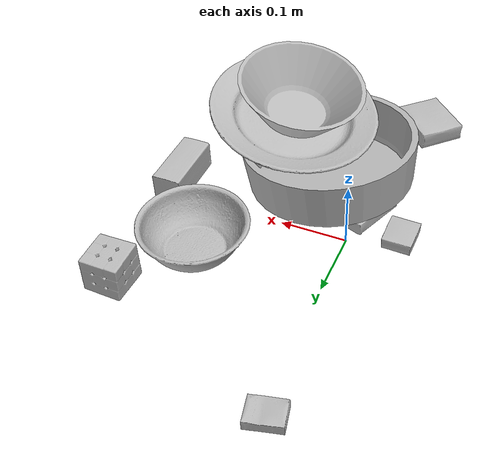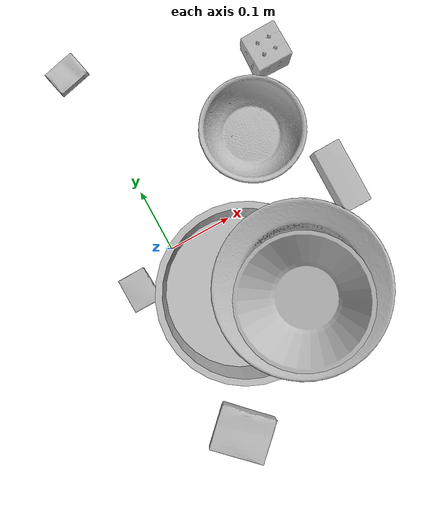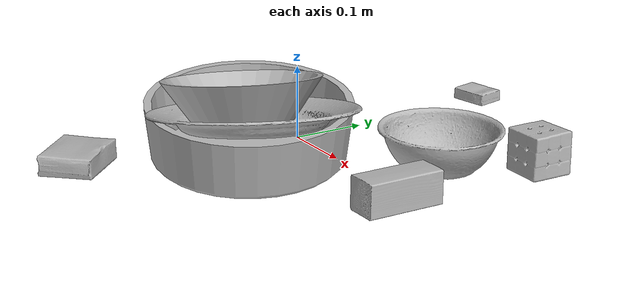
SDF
<sdf version="1.4">
  <world name="default">
    <light name="light1" type="point">
      <pose>0 0 1 0 0 0</pose>
      <diffuse>3 3 3 1</diffuse>
      <specular>3 3 3 1</specular>
    </light>
    <light name="light2" type="point">
      <pose>0 0.5 2 0 0 0</pose>
      <diffuse>1 1 1 1</diffuse>
      <specular>1 1 1 1</specular>
    </light>
    <light name="light3" type="point">
      <pose>0 0.5 2 0 0 0</pose>
      <diffuse>3 3 3 1</diffuse>
      <specular>3 3 3 1</specular>
    </light>
    <scene>
      <ambient>0.7 0.7 0.7</ambient>
    </scene>
    <model name="box1">
      <link name="link_box1">
        <collision name="default">
          <geometry>
            <mesh>
              <uri>model://cracker_box/collision_meshes/collision.obj</uri>
              <scale>0.25 0.25 0.25</scale>
            </mesh>
          </geometry>
          <surface>
            <friction>
              <ode>
                <mu>0.5</mu>
                <mu2>0.5</mu2>
              </ode>
            </friction>
          <contact>
        <ode>
            <max_vel>0</max_vel>
            <min_depth>0.0001</min_depth>
            <kp>1e8</kp>
        </ode>
    </contact></surface>
        </collision>
        <visual name="default">
          <geometry>
            <mesh>
              <uri>model://cracker_box/visual_meshes/visual.dae</uri>
              <scale>0.25 0.25 0.25</scale>
            </mesh>
          </geometry>
        </visual>
        <inertial>
          <mass>0.050503700971603394</mass>
          <pose>0.0002366037224419415 6.358561950037256e-05 -0.0004257383698131889 -0.00031620760376762643 -0.011106489600284392 0.0025467959332018085</pose>
          <inertia>
            <ixx>8.02868e-06</ixx>
            <iyy>1.3256925e-05</iyy>
            <izz>1.8918852e-05</izz>
            <ixy>0</ixy>
            <ixz>0</ixz>
            <iyz>0</iyz>
          </inertia>
        </inertial>
      </link>
      <pose>-0.012172628194093704 0.31295984983444214 0.009096029214560986 -0.014050589326012155 -0.005016568288786254 -2.921016994622917</pose>
    </model>
    <model name="box11">
      <link name="link_box11">
        <collision name="default">
          <geometry>
            <mesh>
              <uri>model://rubiks_cube/collision_meshes/collision.obj</uri>
              <scale>1.0 1.0 1.0</scale>
            </mesh>
          </geometry>
          <surface>
            <friction>
              <ode>
                <mu>0.5</mu>
                <mu2>0.5</mu2>
              </ode>
            </friction>
          <contact>
        <ode>
            <max_vel>0</max_vel>
            <min_depth>0.0001</min_depth>
            <kp>1e8</kp>
        </ode>
    </contact></surface>
        </collision>
        <visual name="default">
          <geometry>
            <mesh>
              <uri>model://rubiks_cube/visual_meshes/visual.dae</uri>
              <scale>1.0 1.0 1.0</scale>
            </mesh>
          </geometry>
        </visual>
        <inertial>
          <mass>0.15071694552898407</mass>
          <pose>2.6721043468569405e-05 5.2569666877388954e-05 -7.264316082000732e-06 -0.05467297119259296 -0.09814009057422186 -0.034453654418704155</pose>
          <inertia>
            <ixx>8.328124e-05</ixx>
            <iyy>8.2892846e-05</iyy>
            <izz>8.397135e-05</izz>
            <ixy>0</ixy>
            <ixz>0</ixz>
            <iyz>0</iyz>
          </inertia>
        </inertial>
      </link>
      <pose>0.26978033781051636 0.19311533868312836 0.028678957372903824 -4.332384524414404e-06 -7.013202332331816e-07 -1.56340812256527</pose>
    </model>
    <model name="box2">
      <link name="link_box2">
        <collision name="default">
          <geometry>
            <mesh>
              <uri>model://gelatin_box/collision_meshes/collision.obj</uri>
              <scale>1.0 1.0 1.0</scale>
            </mesh>
          </geometry>
          <surface>
            <friction>
              <ode>
                <mu>0.5</mu>
                <mu2>0.5</mu2>
              </ode>
            </friction>
          <contact>
        <ode>
            <max_vel>0</max_vel>
            <min_depth>0.0001</min_depth>
            <kp>1e8</kp>
        </ode>
    </contact></surface>
        </collision>
        <visual name="default">
          <geometry>
            <mesh>
              <uri>model://gelatin_box/visual_meshes/visual.dae</uri>
              <scale>1.0 1.0 1.0</scale>
            </mesh>
          </geometry>
        </visual>
        <inertial>
          <mass>0.24173277616500854</mass>
          <pose>0.00043196187471039593 0.00011156872642459348 -0.0003640321083366871 -0.001050371835386973 -0.004755817297158009 0.016440553881960234</pose>
          <inertia>
            <ixx>0.00017064363</ixx>
            <iyy>0.00012188985</iyy>
            <izz>0.00025975762</izz>
            <ixy>0</ixy>
            <ixz>0</ixz>
            <iyz>0</iyz>
          </inertia>
        </inertial>
      </link>
      <pose>-0.03933580219745636 -0.30129894614219666 0.01516831386834383 0.005597457919876653 -0.007304587467906748 0.7710863542715806</pose>
    </model>
    <model name="box21">
      <link name="link_box21">
        <collision name="default">
          <geometry>
            <mesh>
              <uri>model://wood_block/collision_meshes/collision.obj</uri>
              <scale>0.5 0.5 0.5</scale>
            </mesh>
          </geometry>
          <surface>
            <friction>
              <ode>
                <mu>0.5</mu>
                <mu2>0.5</mu2>
              </ode>
            </friction>
          <contact>
        <ode>
            <max_vel>0</max_vel>
            <min_depth>0.0001</min_depth>
            <kp>1e8</kp>
        </ode>
    </contact></surface>
        </collision>
        <visual name="default">
          <geometry>
            <mesh>
              <uri>model://wood_block/visual_meshes/visual.dae</uri>
              <scale>0.5 0.5 0.5</scale>
            </mesh>
          </geometry>
        </visual>
        <inertial>
          <mass>0.16252566874027252</mass>
          <pose>-2.906657982748584e-06 -0.000285404734313488 0.00013204291462898254 -0.05220975528683206 -0.005192696037335319 -0.006861378846526553</pose>
          <inertia>
            <ixx>5.437098e-05</ixx>
            <iyy>0.00017175796</iyy>
            <izz>0.00017111548</izz>
            <ixy>0</ixy>
            <ixz>0</ixz>
            <iyz>0</iyz>
          </inertia>
        </inertial>
      </link>
      <pose>0.27837908267974854 -0.028580104932188988 0.022629262879490852 -0.005208603368205521 0.005718783672569095 -1.567266044570091</pose>
    </model>
    <model name="box3">
      <link name="link_box3">
        <collision name="default">
          <geometry>
            <mesh>
              <uri>model://pudding_box/collision_meshes/collision.obj</uri>
              <scale>0.5 0.5 0.5</scale>
            </mesh>
          </geometry>
          <surface>
            <friction>
              <ode>
                <mu>0.5</mu>
                <mu2>0.5</mu2>
              </ode>
            </friction>
          <contact>
        <ode>
            <max_vel>0</max_vel>
            <min_depth>0.0001</min_depth>
            <kp>1e8</kp>
        </ode>
    </contact></surface>
        </collision>
        <visual name="default">
          <geometry>
            <mesh>
              <uri>model://pudding_box/visual_meshes/visual.dae</uri>
              <scale>0.5 0.5 0.5</scale>
            </mesh>
          </geometry>
        </visual>
        <inertial>
          <mass>0.05576644837856293</mass>
          <pose>0.00024474109522998333 0.0004033942532259971 -0.0002594413817860186 0.005213101792545572 -0.006603798718575614 0.020079825159656634</pose>
          <inertia>
            <ixx>1.5760277e-05</ixx>
            <iyy>1.0603625e-05</iyy>
            <izz>2.3274164e-05</izz>
            <ixy>0</ixy>
            <ixz>0</ixz>
            <iyz>0</iyz>
          </inertia>
        </inertial>
      </link>
      <pose>-0.07268820703029633 -0.03211170434951782 0.009862903505563736 0.02234849888393795 -0.011391750076015119 0.003831654201317972</pose>
    </model>
    <model name="box31">
      <link name="link_box31">
        <collision name="default">
          <geometry>
            <mesh>
              <uri>model://sugar_box/collision_meshes/collision.obj</uri>
              <scale>0.5 0.5 0.5</scale>
            </mesh>
          </geometry>
          <surface>
            <friction>
              <ode>
                <mu>0.5</mu>
                <mu2>0.5</mu2>
              </ode>
            </friction>
          <contact>
        <ode>
            <max_vel>0</max_vel>
            <min_depth>0.0001</min_depth>
            <kp>1e8</kp>
        </ode>
    </contact></surface>
        </collision>
        <visual name="default">
          <geometry>
            <mesh>
              <uri>model://sugar_box/visual_meshes/visual.dae</uri>
              <scale>0.5 0.5 0.5</scale>
            </mesh>
          </geometry>
        </visual>
        <inertial>
          <mass>0.1100529357790947</mass>
          <pose>0.0005171863595023751 1.924554817378521e-05 -0.00018182402709499002 -0.00040462641680988955 0.001050663522315131 0.0026153787888612426</pose>
          <inertia>
            <ixx>2.2923945e-05</ixx>
            <iyy>7.409492e-05</iyy>
            <izz>8.870046e-05</izz>
            <ixy>0</ixy>
            <ixz>0</ixz>
            <iyz>0</iyz>
          </inertia>
        </inertial>
      </link>
      <pose>-0.01052128430455923 -0.06451674550771713 0.011611556634306908 0.022952419163353187 -0.01325692251153215 1.2040444558825978</pose>
    </model>
    <model name="plate1">
      <link name="link_plate1">
        <collision name="default">
          <geometry>
            <mesh>
              <uri>model://pan_tefal/collision_meshes/collision.obj</uri>
              <scale>1.0 1.0 1.0</scale>
            </mesh>
          </geometry>
          <surface>
            <friction>
              <ode>
                <mu>0.5</mu>
                <mu2>0.5</mu2>
              </ode>
            </friction>
          <contact>
        <ode>
            <max_vel>0</max_vel>
            <min_depth>0.0001</min_depth>
            <kp>1e8</kp>
        </ode>
    </contact></surface>
        </collision>
        <visual name="default">
          <geometry>
            <mesh>
              <uri>model://pan_tefal/visual_meshes/visual.dae</uri>
              <scale>1.0 1.0 1.0</scale>
            </mesh>
          </geometry>
        </visual>
        <inertial>
          <mass>1.207520604133606</mass>
          <pose>-0.00018002177239395678 3.2792409911053255e-05 -0.00851493701338768 0.0008190288495961148 -0.0003301407263612178 -0.3318541272495768</pose>
          <inertia>
            <ixx>0.008335457</ixx>
            <iyy>0.008389196</iyy>
            <izz>0.015343971</izz>
            <ixy>0</ixy>
            <ixz>0</ixz>
            <iyz>0</iyz>
          </inertia>
        </inertial>
      </link>
      <pose>0.06626876443624496 -0.1101275384426117 0.05148060992360115 0.0023190192193231277 0.11601345895961233 -0.423743830759396</pose>
    </model>
    <model name="bowl1">
      <link name="link_bowl1">
        <collision name="default">
          <geometry>
            <mesh>
              <uri>model://bowl/collision_meshes/collision.obj</uri>
              <scale>1.0 1.0 1.0</scale>
            </mesh>
          </geometry>
          <surface>
            <friction>
              <ode>
                <mu>0.5</mu>
                <mu2>0.5</mu2>
              </ode>
            </friction>
          <contact>
        <ode>
            <max_vel>0</max_vel>
            <min_depth>0.0001</min_depth>
            <kp>1e8</kp>
        </ode>
    </contact></surface>
        </collision>
        <visual name="default">
          <geometry>
            <mesh>
              <uri>model://bowl/visual_meshes/visual.dae</uri>
              <scale>1.0 1.0 1.0</scale>
            </mesh>
          </geometry>
        </visual>
        <inertial>
          <mass>0.09256309270858765</mass>
          <pose>0.00020445158588699996 -0.001030202372930944 -0.0008042642730288208 -0.015764073075752352 0.01454679669645375 0.7140412125775129</pose>
          <inertia>
            <ixx>0.00021262471</ixx>
            <iyy>0.00020787389</iyy>
            <izz>0.00035770793</izz>
            <ixy>0</ixy>
            <ixz>0</ixz>
            <iyz>0</iyz>
          </inertia>
        </inertial>
      </link>
      <pose>0.19354675710201263 0.09617986530065536 0.027780000120401382 1.400165975209064e-08 3.280668342022648e-08 -1.0465083998630278</pose>
    </model>
    <model name="plate2">
      <link name="link_plate2">
        <collision name="default">
          <geometry>
            <mesh>
              <uri>model://plate/collision_meshes/collision.obj</uri>
              <scale>1.0 1.0 1.0</scale>
            </mesh>
          </geometry>
          <surface>
            <friction>
              <ode>
                <mu>0.5</mu>
                <mu2>0.5</mu2>
              </ode>
            </friction>
          <contact>
        <ode>
            <max_vel>0</max_vel>
            <min_depth>0.0001</min_depth>
            <kp>1e8</kp>
        </ode>
    </contact></surface>
        </collision>
        <visual name="default">
          <geometry>
            <mesh>
              <uri>model://plate/visual_meshes/visual.dae</uri>
              <scale>1.0 1.0 1.0</scale>
            </mesh>
          </geometry>
        </visual>
        <inertial>
          <mass>0.22150008380413055</mass>
          <pose>-0.0006044640904292464 0.0002782581141218543 -0.0010561984963715076 0.0022187839711676756 -0.00322547471274247 0.4526095389577293</pose>
          <inertia>
            <ixx>0.0010361817</ixx>
            <iyy>0.0010262709</iyy>
            <izz>0.0020266173</izz>
            <ixy>0</ixy>
            <ixz>0</ixz>
            <iyz>0</iyz>
          </inertia>
        </inertial>
      </link>
      <pose>0.1394437998533249 -0.14356251060962677 0.08964557945728302 0.007646111551980046 -0.19129474682736758 -0.43170583151443426</pose>
    </model>
    <model name="bowl2">
      <link name="link_bowl2">
        <collision name="default">
          <geometry>
            <mesh>
              <uri>model://bowl_a/collision_meshes/collision.obj</uri>
              <scale>1.0 1.0 1.0</scale>
            </mesh>
          </geometry>
          <surface>
            <friction>
              <ode>
                <mu>0.5</mu>
                <mu2>0.5</mu2>
              </ode>
            </friction>
          <contact>
        <ode>
            <max_vel>0</max_vel>
            <min_depth>0.0001</min_depth>
            <kp>1e8</kp>
        </ode>
    </contact></surface>
        </collision>
        <visual name="default">
          <geometry>
            <mesh>
              <uri>model://bowl_a/visual_meshes/visual.dae</uri>
              <scale>1.0 1.0 1.0</scale>
            </mesh>
          </geometry>
        </visual>
        <inertial>
          <mass>0.4869906008243561</mass>
          <pose>0.0002786735713016242 4.731232547783293e-05 -0.001376529224216938 -0.0009805388639875933 -0.0010938169956893674 -0.19123322132810686</pose>
          <inertia>
            <ixx>0.0013864844</ixx>
            <iyy>0.0013949967</iyy>
            <izz>0.0024659163</izz>
            <ixy>0</ixy>
            <ixz>0</ixz>
            <iyz>0</iyz>
          </inertia>
        </inertial>
      </link>
      <pose>0.13567005097866058 -0.15678423643112183 0.11131611466407776 0.14035008119185657 -0.13739261488194848 -1.1319946382969934</pose>
    </model>
  <physics type="ode">
      <max_contacts>50</max_contacts>
      <ode>
        <solver>
          <type>quick</type>
          <iters>75</iters>
        </solver>
        <constraints>
          <contact_max_correcting_vel>0</contact_max_correcting_vel>
          <contact_surface_layer>0</contact_surface_layer>
        </constraints>
      </ode>
    </physics></world>
</sdf>
